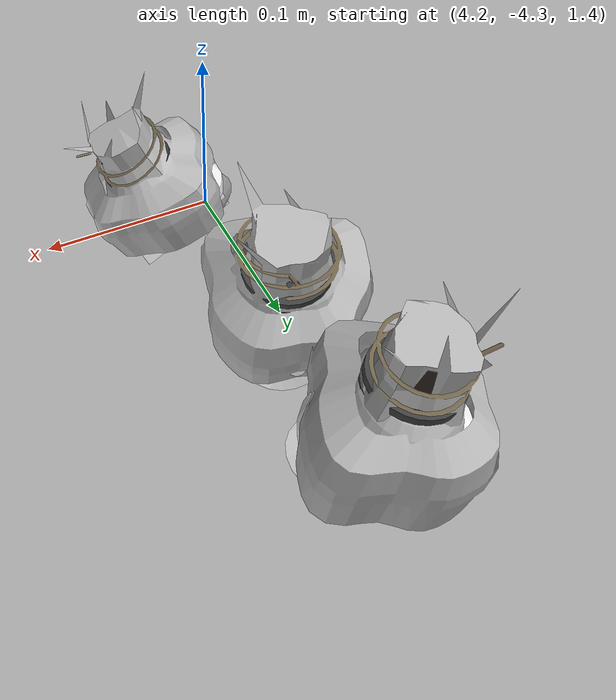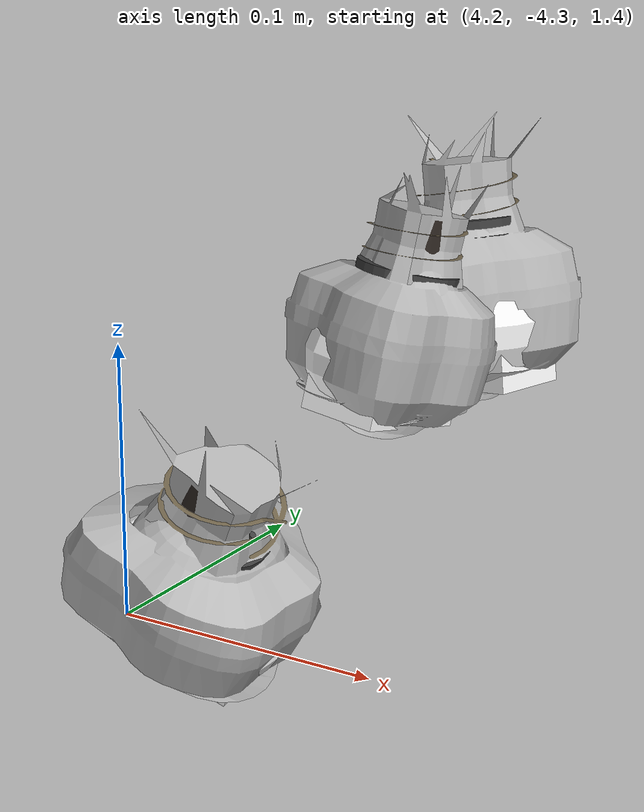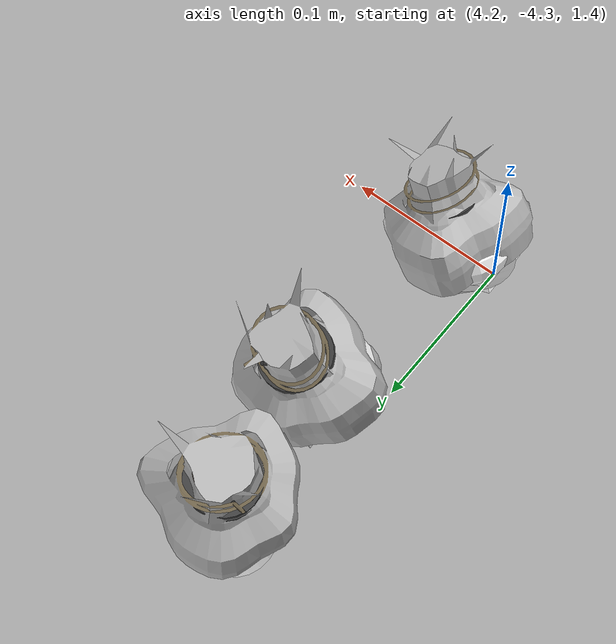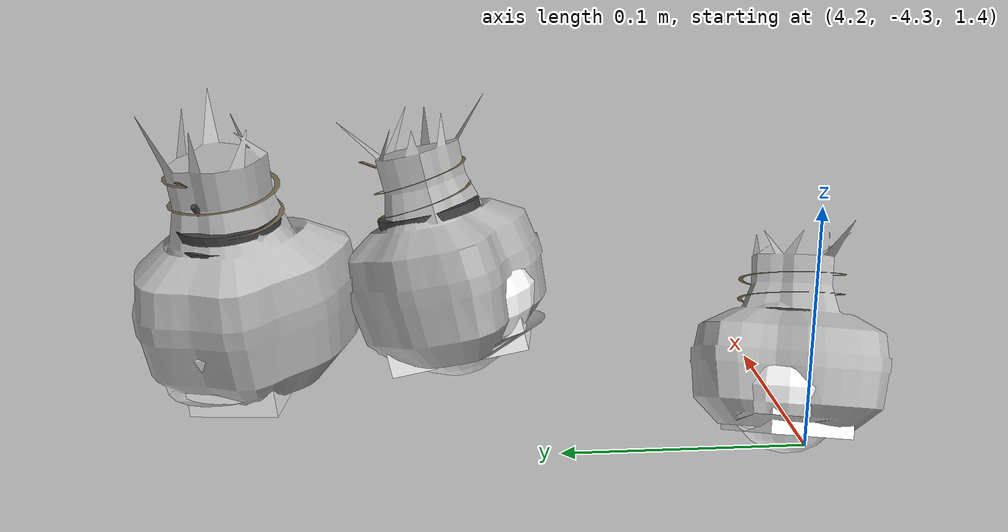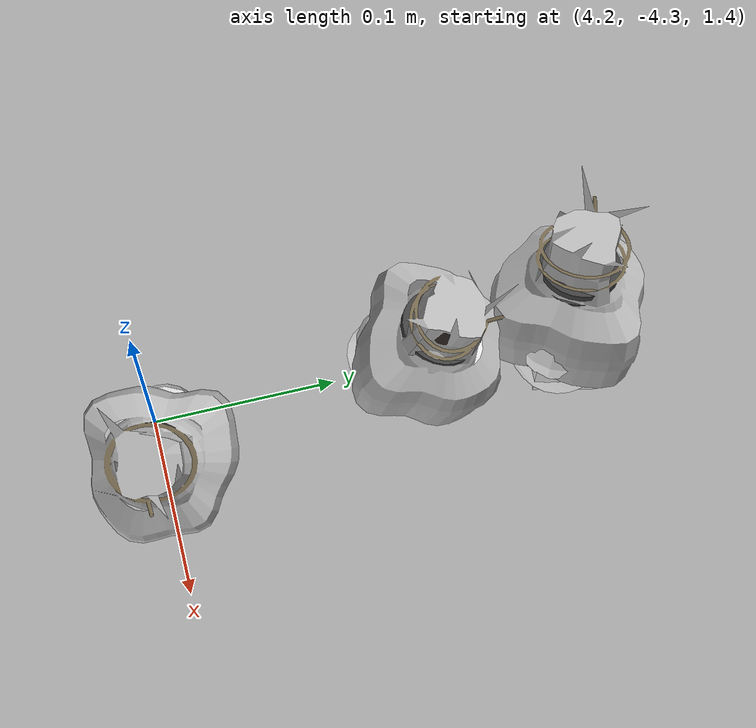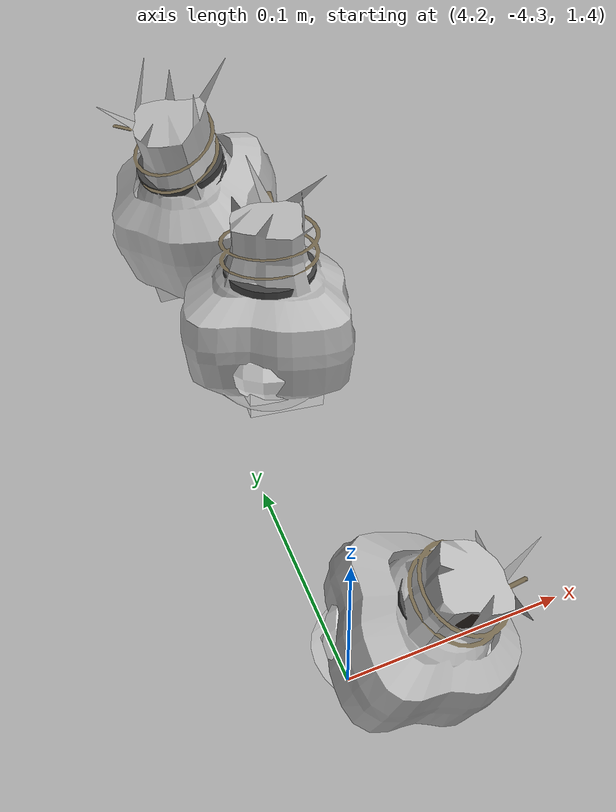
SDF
<sdf version="1.11">
 <world name="peach_orchard">
  <model name="ground">
   <static>true</static>
   <link name="link">
    <visual name="soil">
     <geometry><plane><normal>0 0 1</normal><size>32 22</size></plane></geometry>
     <material>
      <ambient>1 1 1 1</ambient>
      <diffuse>1 1 1 1</diffuse>
      <specular>0.1 0.1 0.1 1</specular>
      <pbr>
       <metal>
        <albedo_map>textures/soil_albedo.png</albedo_map>
        <normal_map type="tangent">textures/soil_normal.png</normal_map>
        <roughness>0.95</roughness>
        <metalness>0</metalness>
       </metal>
      </pbr>
     </material>
    </visual>
    <collision name="c_soil">
     <geometry><plane><normal>0 0 1</normal><size>32 22</size></plane></geometry>
    </collision>
   </link>
  </model>
  <model name="peach_tree_r3_t1_00">
   <pose>4.22 -4.29722 1.39461 0 0.420806 -0.261469</pose>
   <static>true</static>
   <link name="bag">
    <visual name="bag_mesh">
     <pose>0 0 0.0380684 0 0 -0</pose>
     <geometry>
      <mesh><uri>model://peach_sim/meshes/bagged_peach.glb</uri><scale>1.03576 1.17712 0.865191</scale></mesh>
     </geometry>
    </visual>
    <visual name="body">
     <pose>0 0 0.0200684 0 0 0</pose>
     <geometry><ellipsoid><radii>0.0388409 0.030605 0.0216739</radii></ellipsoid></geometry>
     <material>
      <ambient>1 1 1 1</ambient>
      <diffuse>1 1 1 1</diffuse>
      <specular>0.1 0.1 0.1 1</specular>
      <pbr>
       <metal>
        <albedo_map>textures/paper_bag_albedo.png</albedo_map>
        <normal_map type="tangent">textures/paper_bag_normal.png</normal_map>
        <roughness>0.72</roughness>
        <metalness>0</metalness>
       </metal>
      </pbr>
     </material>
    </visual>
    <visual name="bottom_fold">
     <pose>0 0 0.012 0 0 0.35</pose>
     <geometry><box><size>0.0602033 0.0351957 0.022</size></box></geometry>
     <material>
      <ambient>1 1 1 1</ambient>
      <diffuse>1 1 1 1</diffuse>
      <specular>0.1 0.1 0.1 1</specular>
      <pbr>
       <metal>
        <albedo_map>textures/paper_bag_albedo.png</albedo_map>
        <normal_map type="tangent">textures/paper_bag_normal.png</normal_map>
        <roughness>0.8</roughness>
        <metalness>0</metalness>
       </metal>
      </pbr>
     </material>
    </visual>
    <visual name="fruit">
     <pose>0 0 0.0171686 0 0 0</pose>
     <geometry><sphere><radius>0.0240954</radius></sphere></geometry>
     <material>
      <ambient>1 1 1 1</ambient>
      <diffuse>1 1 1 1</diffuse>
      <specular>0.1 0.1 0.1 1</specular>
      <pbr>
       <metal>
        <albedo_map>textures/fruit_skin_albedo.png</albedo_map>
        <normal_map type="tangent">textures/fruit_skin_normal.png</normal_map>
        <roughness>0.55</roughness>
        <metalness>0</metalness>
       </metal>
      </pbr>
     </material>
    </visual>
    <visual name="neck">
     <pose>0 0 0.0491368 0 0 0</pose>
     <geometry><cylinder><radius>0.013</radius><length>0.018</length></cylinder></geometry>
     <material>
      <ambient>1 1 1 1</ambient>
      <diffuse>1 1 1 1</diffuse>
      <specular>0.1 0.1 0.1 1</specular>
      <pbr>
       <metal>
        <albedo_map>textures/paper_bag_albedo.png</albedo_map>
        <normal_map type="tangent">textures/paper_bag_normal.png</normal_map>
        <roughness>0.75</roughness>
        <metalness>0</metalness>
       </metal>
      </pbr>
     </material>
    </visual>
    <visual name="gather">
     <pose>0 0 0.0301368 0 0 0</pose>
     <geometry><cylinder><radius>0.019</radius><length>0.02</length></cylinder></geometry>
     <material>
      <ambient>1 1 1 1</ambient>
      <diffuse>1 1 1 1</diffuse>
      <specular>0.1 0.1 0.1 1</specular>
      <pbr>
       <metal>
        <albedo_map>textures/paper_bag_albedo.png</albedo_map>
        <normal_map type="tangent">textures/paper_bag_normal.png</normal_map>
        <roughness>0.8</roughness>
        <metalness>0</metalness>
       </metal>
      </pbr>
     </material>
    </visual>
    <visual name="inner_paper">
     <pose>0 0 0.0541368 0 0 0</pose>
     <geometry><cylinder><radius>0.01</radius><length>0.008</length></cylinder></geometry>
     <material>
      <ambient>0.180392 0.14902 0.133333 1</ambient>
      <diffuse>0.180392 0.14902 0.133333 1</diffuse>
      <specular>0.1 0.1 0.1 1</specular>
     </material>
    </visual>
    <visual name="wire_0">
     <pose>0 0 0.0441368 0 0 0</pose>
     <geometry><cylinder><radius>0.0205</radius><length>0.0035</length></cylinder></geometry>
     <material>
      <ambient>0.25 0.25 0.25 1</ambient>
      <diffuse>0.25 0.25 0.25 1</diffuse>
      <specular>0.1 0.1 0.1 1</specular>
     </material>
    </visual>
    <visual name="wire_1">
     <pose>0 0 0.0511368 0 0 0</pose>
     <geometry><cylinder><radius>0.0205</radius><length>0.0035</length></cylinder></geometry>
     <material>
      <ambient>0.25 0.25 0.25 1</ambient>
      <diffuse>0.25 0.25 0.25 1</diffuse>
      <specular>0.1 0.1 0.1 1</specular>
     </material>
    </visual>
    <visual name="wire_tail">
     <pose>0.01 0 0.0521368 0 0.521618 0</pose>
     <geometry><cylinder><radius>0.0012</radius><length>0.026</length></cylinder></geometry>
     <material>
      <ambient>0.25 0.25 0.25 1</ambient>
      <diffuse>0.25 0.25 0.25 1</diffuse>
      <specular>0.1 0.1 0.1 1</specular>
     </material>
    </visual>
    <collision name="c_body">
     <pose>0 0 0.0200684 0 0 0</pose>
     <geometry><cylinder><radius>0.0388409</radius><length>0.0401368</length></cylinder></geometry>
    </collision>
   </link>
  </model>
  <model name="peach_tree_r3_t1_01">
   <pose>4.22 -4.16259 1.43613 0 0.243921 1.11358</pose>
   <static>true</static>
   <link name="bag">
    <visual name="bag_mesh">
     <pose>0 0 0.0423897 0 0 0</pose>
     <geometry>
      <mesh><uri>model://peach_sim/meshes/bagged_peach.glb</uri><scale>0.945619 1.13268 0.963403</scale></mesh>
     </geometry>
    </visual>
    <visual name="body">
     <pose>0 0 0.0243897 0 0 0</pose>
     <geometry><ellipsoid><radii>0.0354607 0.0294498 0.0263409</radii></ellipsoid></geometry>
     <material>
      <ambient>1 1 1 1</ambient>
      <diffuse>1 1 1 1</diffuse>
      <specular>0.1 0.1 0.1 1</specular>
      <pbr>
       <metal>
        <albedo_map>textures/paper_bag_albedo.png</albedo_map>
        <normal_map type="tangent">textures/paper_bag_normal.png</normal_map>
        <roughness>0.72</roughness>
        <metalness>0</metalness>
       </metal>
      </pbr>
     </material>
    </visual>
    <visual name="bottom_fold">
     <pose>0 0 0.012 0 0 0.35</pose>
     <geometry><box><size>0.0549641 0.0338673 0.022</size></box></geometry>
     <material>
      <ambient>1 1 1 1</ambient>
      <diffuse>1 1 1 1</diffuse>
      <specular>0.1 0.1 0.1 1</specular>
      <pbr>
       <metal>
        <albedo_map>textures/paper_bag_albedo.png</albedo_map>
        <normal_map type="tangent">textures/paper_bag_normal.png</normal_map>
        <roughness>0.8</roughness>
        <metalness>0</metalness>
       </metal>
      </pbr>
     </material>
    </visual>
    <visual name="fruit">
     <pose>0 0 0.0215185 0 0 0</pose>
     <geometry><sphere><radius>0.0286192</radius></sphere></geometry>
     <material>
      <ambient>1 1 1 1</ambient>
      <diffuse>1 1 1 1</diffuse>
      <specular>0.1 0.1 0.1 1</specular>
      <pbr>
       <metal>
        <albedo_map>textures/fruit_skin_albedo.png</albedo_map>
        <normal_map type="tangent">textures/fruit_skin_normal.png</normal_map>
        <roughness>0.55</roughness>
        <metalness>0</metalness>
       </metal>
      </pbr>
     </material>
    </visual>
    <visual name="neck">
     <pose>0 0 0.0577794 0 0 0</pose>
     <geometry><cylinder><radius>0.013</radius><length>0.018</length></cylinder></geometry>
     <material>
      <ambient>1 1 1 1</ambient>
      <diffuse>1 1 1 1</diffuse>
      <specular>0.1 0.1 0.1 1</specular>
      <pbr>
       <metal>
        <albedo_map>textures/paper_bag_albedo.png</albedo_map>
        <normal_map type="tangent">textures/paper_bag_normal.png</normal_map>
        <roughness>0.75</roughness>
        <metalness>0</metalness>
       </metal>
      </pbr>
     </material>
    </visual>
    <visual name="gather">
     <pose>0 0 0.0387794 0 0 0</pose>
     <geometry><cylinder><radius>0.019</radius><length>0.02</length></cylinder></geometry>
     <material>
      <ambient>1 1 1 1</ambient>
      <diffuse>1 1 1 1</diffuse>
      <specular>0.1 0.1 0.1 1</specular>
      <pbr>
       <metal>
        <albedo_map>textures/paper_bag_albedo.png</albedo_map>
        <normal_map type="tangent">textures/paper_bag_normal.png</normal_map>
        <roughness>0.8</roughness>
        <metalness>0</metalness>
       </metal>
      </pbr>
     </material>
    </visual>
    <visual name="inner_paper">
     <pose>0 0 0.0627794 0 0 0</pose>
     <geometry><cylinder><radius>0.01</radius><length>0.008</length></cylinder></geometry>
     <material>
      <ambient>0.180392 0.14902 0.133333 1</ambient>
      <diffuse>0.180392 0.14902 0.133333 1</diffuse>
      <specular>0.1 0.1 0.1 1</specular>
     </material>
    </visual>
    <visual name="wire_0">
     <pose>0 0 0.0527794 0 0 0</pose>
     <geometry><cylinder><radius>0.0205</radius><length>0.0035</length></cylinder></geometry>
     <material>
      <ambient>0.25 0.25 0.25 1</ambient>
      <diffuse>0.25 0.25 0.25 1</diffuse>
      <specular>0.1 0.1 0.1 1</specular>
     </material>
    </visual>
    <visual name="wire_1">
     <pose>0 0 0.0597794 0 0 0</pose>
     <geometry><cylinder><radius>0.0205</radius><length>0.0035</length></cylinder></geometry>
     <material>
      <ambient>0.25 0.25 0.25 1</ambient>
      <diffuse>0.25 0.25 0.25 1</diffuse>
      <specular>0.1 0.1 0.1 1</specular>
     </material>
    </visual>
    <visual name="wire_tail">
     <pose>0.01 0 0.0607794 0 0.521618 0</pose>
     <geometry><cylinder><radius>0.0012</radius><length>0.026</length></cylinder></geometry>
     <material>
      <ambient>0.25 0.25 0.25 1</ambient>
      <diffuse>0.25 0.25 0.25 1</diffuse>
      <specular>0.1 0.1 0.1 1</specular>
     </material>
    </visual>
    <collision name="c_body">
     <pose>0 0 0.0243897 0 0 0</pose>
     <geometry><cylinder><radius>0.0354607</radius><length>0.0487794</length></cylinder></geometry>
    </collision>
   </link>
  </model>
  <model name="peach_tree_r3_t1_02">
   <pose>4.22 -4.07941 1.42724 0 0.149934 2.58681</pose>
   <static>true</static>
   <link name="bag">
    <visual name="bag_mesh">
     <pose>0 0 0.0474804 0 0 0</pose>
     <geometry>
      <mesh><uri>model://peach_sim/meshes/bagged_peach.glb</uri><scale>1.00063 1.16627 1.0791</scale></mesh>
     </geometry>
    </visual>
    <visual name="body">
     <pose>0 0 0.0294804 0 0 0</pose>
     <geometry><ellipsoid><radii>0.0375237 0.0303229 0.0318388</radii></ellipsoid></geometry>
     <material>
      <ambient>1 1 1 1</ambient>
      <diffuse>1 1 1 1</diffuse>
      <specular>0.1 0.1 0.1 1</specular>
      <pbr>
       <metal>
        <albedo_map>textures/paper_bag_albedo.png</albedo_map>
        <normal_map type="tangent">textures/paper_bag_normal.png</normal_map>
        <roughness>0.72</roughness>
        <metalness>0</metalness>
       </metal>
      </pbr>
     </material>
    </visual>
    <visual name="bottom_fold">
     <pose>0 0 0.012 0 0 0.35</pose>
     <geometry><box><size>0.0581617 0.0348714 0.022</size></box></geometry>
     <material>
      <ambient>1 1 1 1</ambient>
      <diffuse>1 1 1 1</diffuse>
      <specular>0.1 0.1 0.1 1</specular>
      <pbr>
       <metal>
        <albedo_map>textures/paper_bag_albedo.png</albedo_map>
        <normal_map type="tangent">textures/paper_bag_normal.png</normal_map>
        <roughness>0.8</roughness>
        <metalness>0</metalness>
       </metal>
      </pbr>
     </material>
    </visual>
    <visual name="fruit">
     <pose>0 0 0.0171854 0 0 0</pose>
     <geometry><sphere><radius>0.0241129</radius></sphere></geometry>
     <material>
      <ambient>1 1 1 1</ambient>
      <diffuse>1 1 1 1</diffuse>
      <specular>0.1 0.1 0.1 1</specular>
      <pbr>
       <metal>
        <albedo_map>textures/fruit_skin_albedo.png</albedo_map>
        <normal_map type="tangent">textures/fruit_skin_normal.png</normal_map>
        <roughness>0.55</roughness>
        <metalness>0</metalness>
       </metal>
      </pbr>
     </material>
    </visual>
    <visual name="neck">
     <pose>0 0 0.0679607 0 0 0</pose>
     <geometry><cylinder><radius>0.013</radius><length>0.018</length></cylinder></geometry>
     <material>
      <ambient>1 1 1 1</ambient>
      <diffuse>1 1 1 1</diffuse>
      <specular>0.1 0.1 0.1 1</specular>
      <pbr>
       <metal>
        <albedo_map>textures/paper_bag_albedo.png</albedo_map>
        <normal_map type="tangent">textures/paper_bag_normal.png</normal_map>
        <roughness>0.75</roughness>
        <metalness>0</metalness>
       </metal>
      </pbr>
     </material>
    </visual>
    <visual name="gather">
     <pose>0 0 0.0489607 0 0 0</pose>
     <geometry><cylinder><radius>0.019</radius><length>0.02</length></cylinder></geometry>
     <material>
      <ambient>1 1 1 1</ambient>
      <diffuse>1 1 1 1</diffuse>
      <specular>0.1 0.1 0.1 1</specular>
      <pbr>
       <metal>
        <albedo_map>textures/paper_bag_albedo.png</albedo_map>
        <normal_map type="tangent">textures/paper_bag_normal.png</normal_map>
        <roughness>0.8</roughness>
        <metalness>0</metalness>
       </metal>
      </pbr>
     </material>
    </visual>
    <visual name="inner_paper">
     <pose>0 0 0.0729607 0 0 0</pose>
     <geometry><cylinder><radius>0.01</radius><length>0.008</length></cylinder></geometry>
     <material>
      <ambient>0.180392 0.14902 0.133333 1</ambient>
      <diffuse>0.180392 0.14902 0.133333 1</diffuse>
      <specular>0.1 0.1 0.1 1</specular>
     </material>
    </visual>
    <visual name="wire_0">
     <pose>0 0 0.0629607 0 0 0</pose>
     <geometry><cylinder><radius>0.0205</radius><length>0.0035</length></cylinder></geometry>
     <material>
      <ambient>0.25 0.25 0.25 1</ambient>
      <diffuse>0.25 0.25 0.25 1</diffuse>
      <specular>0.1 0.1 0.1 1</specular>
     </material>
    </visual>
    <visual name="wire_1">
     <pose>0 0 0.0699607 0 0 0</pose>
     <geometry><cylinder><radius>0.0205</radius><length>0.0035</length></cylinder></geometry>
     <material>
      <ambient>0.25 0.25 0.25 1</ambient>
      <diffuse>0.25 0.25 0.25 1</diffuse>
      <specular>0.1 0.1 0.1 1</specular>
     </material>
    </visual>
    <visual name="wire_tail">
     <pose>0.01 0 0.0709607 0 0.521618 0</pose>
     <geometry><cylinder><radius>0.0012</radius><length>0.026</length></cylinder></geometry>
     <material>
      <ambient>0.25 0.25 0.25 1</ambient>
      <diffuse>0.25 0.25 0.25 1</diffuse>
      <specular>0.1 0.1 0.1 1</specular>
     </material>
    </visual>
    <collision name="c_body">
     <pose>0 0 0.0294804 0 0 0</pose>
     <geometry><cylinder><radius>0.0375237</radius><length>0.0589607</length></cylinder></geometry>
    </collision>
   </link>
  </model>
 </world>
</sdf>
